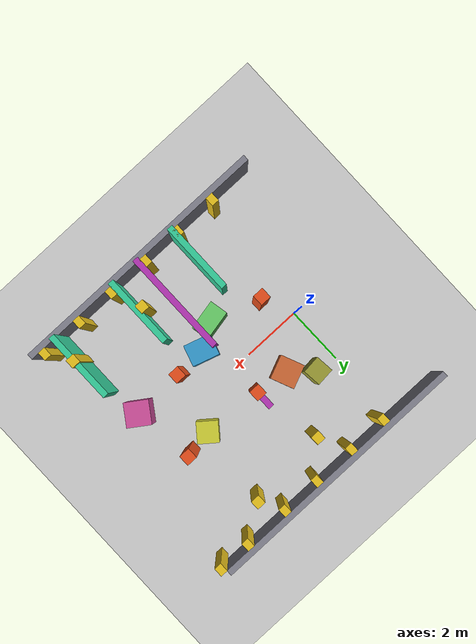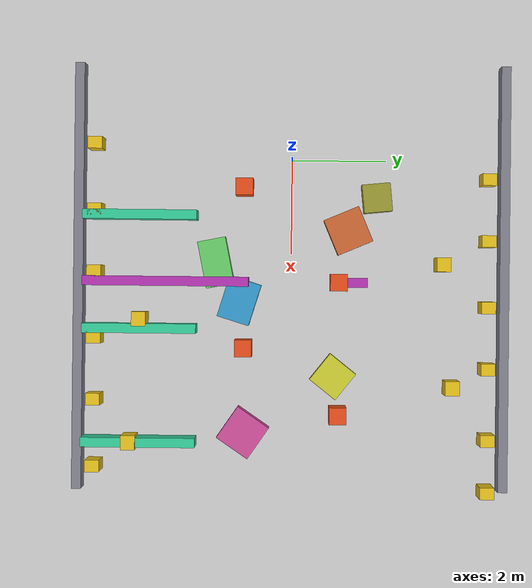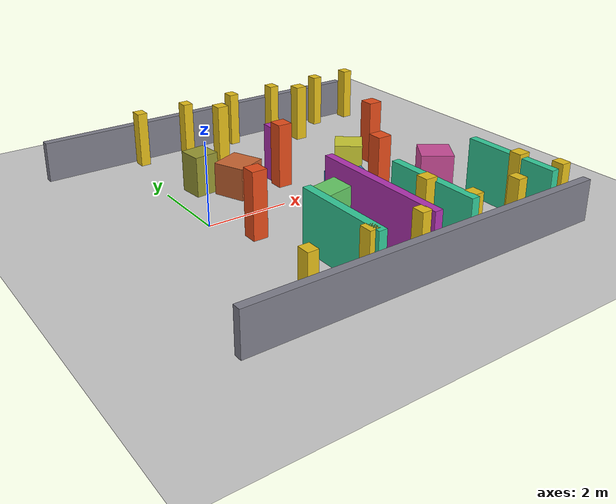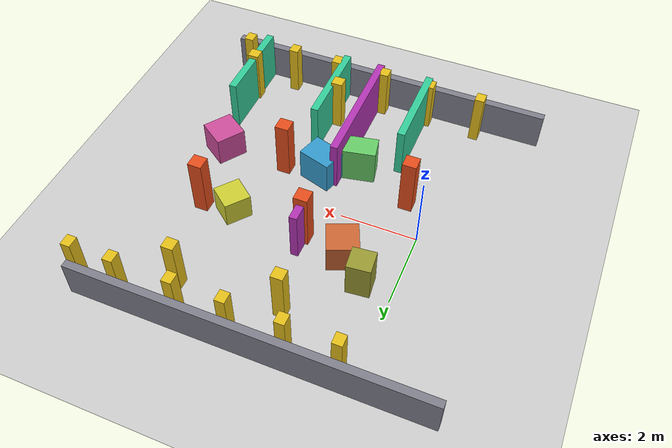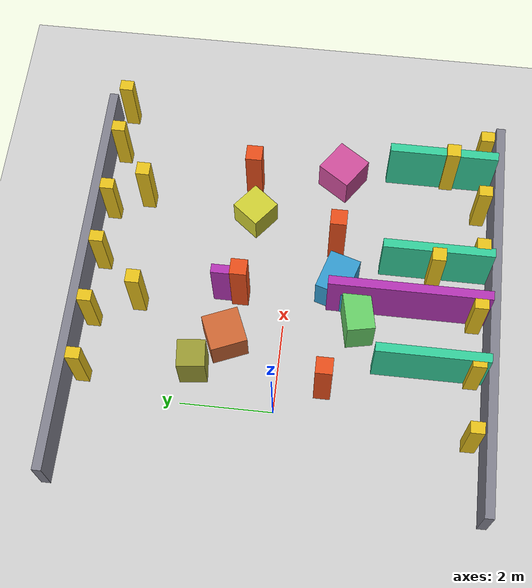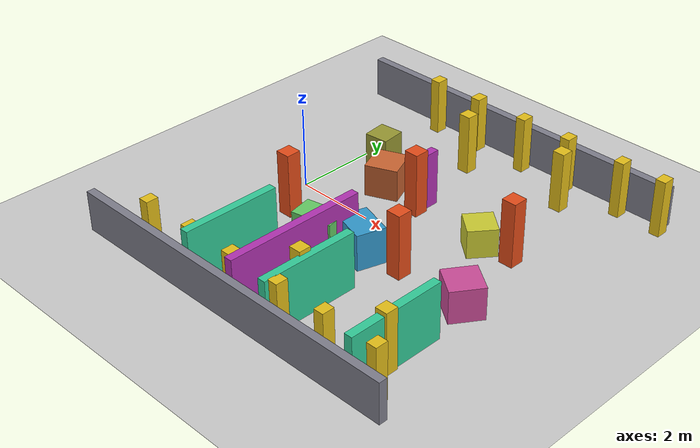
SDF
<?xml version="1.0" ?>
<sdf version="1.6">
  <world name="m1_sparse_plain">

    <!-- 物理参数：1ms 步长 / RTF 目标 0.3~0.8（rate=500 → 上限 0.5） -->
    <physics type="ode">
      <max_step_size>0.001</max_step_size>
      <real_time_update_rate>500</real_time_update_rate>
      <max_contacts>20</max_contacts>
      <ode>
        <solver>
          <type>quick</type>
          <iters>50</iters>
          <sor>1.3</sor>
        </solver>
        <constraints>
          <cfm>0.0</cfm>
          <erp>0.2</erp>
        </constraints>
      </ode>
    </physics>

    <!-- 全局 ROS 桥：/clock + /use_sim_time + spawn_model + /gazebo/model_states（真值交叉核对用） -->
    <plugin name="gazebo_ros_init" filename="libgazebo_ros_init.so"/>
    <plugin name="gazebo_ros_factory" filename="libgazebo_ros_factory.so"/>

    <!-- 光照与地面 -->
    <include>
      <uri>model://sun</uri>
    </include>
    <include>
      <uri>model://ground_plane</uri>
    </include>

    <!-- 场景边界墙（可选防跑飞，距走廊 4m，M1 判据不依赖） -->
    <model name="perimeter_north">
      <static>true</static>
      <pose>2.5 4.5 0.5 0 0 0</pose>
      <link name="link">
        <collision name="col"><geometry><box><size>9 0.2 1.0</size></box></geometry></collision>
        <visual name="vis"><geometry><box><size>9 0.2 1.0</size></box></geometry><material><ambient>0.5 0.5 0.55 1</ambient></material></visual>
      </link>
    </model>
    <model name="perimeter_south">
      <static>true</static>
      <pose>2.5 -4.5 0.5 0 0 0</pose>
      <link name="link">
        <collision name="col"><geometry><box><size>9 0.2 1.0</size></box></geometry></collision>
        <visual name="vis"><geometry><box><size>9 0.2 1.0</size></box></geometry><material><ambient>0.5 0.5 0.55 1</ambient></material></visual>
      </link>
    </model>

    <!-- 非对称定位特征（R786 方案 A）：沿墙 12 根肋 + 4 根独立柱；
         x 位置左右不等间距 → 给沿航向一维观测；|y|≥3.2 远离所有任务路线。 -->
    <model name="rib_n0">
      <static>true</static>
      <pose>0.4 4.15 0.70 0 0 0</pose>
      <link name="link">
        <collision name="col"><geometry><box><size>0.25 0.3 1.4</size></box></geometry></collision>
        <visual name="vis"><geometry><box><size>0.25 0.3 1.4</size></box></geometry><material><ambient>0.9 0.75 0.1 1</ambient></material></visual>
      </link>
    </model>
    <model name="rib_n1">
      <static>true</static>
      <pose>1.7 4.15 0.70 0 0 0</pose>
      <link name="link">
        <collision name="col"><geometry><box><size>0.25 0.3 1.4</size></box></geometry></collision>
        <visual name="vis"><geometry><box><size>0.25 0.3 1.4</size></box></geometry><material><ambient>0.9 0.75 0.1 1</ambient></material></visual>
      </link>
    </model>
    <model name="rib_n2">
      <static>true</static>
      <pose>3.1 4.15 0.70 0 0 0</pose>
      <link name="link">
        <collision name="col"><geometry><box><size>0.25 0.3 1.4</size></box></geometry></collision>
        <visual name="vis"><geometry><box><size>0.25 0.3 1.4</size></box></geometry><material><ambient>0.9 0.75 0.1 1</ambient></material></visual>
      </link>
    </model>
    <model name="rib_n3">
      <static>true</static>
      <pose>4.4 4.15 0.70 0 0 0</pose>
      <link name="link">
        <collision name="col"><geometry><box><size>0.25 0.3 1.4</size></box></geometry></collision>
        <visual name="vis"><geometry><box><size>0.25 0.3 1.4</size></box></geometry><material><ambient>0.9 0.75 0.1 1</ambient></material></visual>
      </link>
    </model>
    <model name="rib_n4">
      <static>true</static>
      <pose>5.9 4.15 0.70 0 0 0</pose>
      <link name="link">
        <collision name="col"><geometry><box><size>0.25 0.3 1.4</size></box></geometry></collision>
        <visual name="vis"><geometry><box><size>0.25 0.3 1.4</size></box></geometry><material><ambient>0.9 0.75 0.1 1</ambient></material></visual>
      </link>
    </model>
    <model name="rib_n5">
      <static>true</static>
      <pose>7.0 4.15 0.70 0 0 0</pose>
      <link name="link">
        <collision name="col"><geometry><box><size>0.25 0.3 1.4</size></box></geometry></collision>
        <visual name="vis"><geometry><box><size>0.25 0.3 1.4</size></box></geometry><material><ambient>0.9 0.75 0.1 1</ambient></material></visual>
      </link>
    </model>
    <model name="rib_s0">
      <static>true</static>
      <pose>-0.3 -4.15 0.70 0 0 0</pose>
      <link name="link">
        <collision name="col"><geometry><box><size>0.25 0.3 1.4</size></box></geometry></collision>
        <visual name="vis"><geometry><box><size>0.25 0.3 1.4</size></box></geometry><material><ambient>0.9 0.75 0.1 1</ambient></material></visual>
      </link>
    </model>
    <model name="rib_s1">
      <static>true</static>
      <pose>1.1 -4.15 0.70 0 0 0</pose>
      <link name="link">
        <collision name="col"><geometry><box><size>0.25 0.3 1.4</size></box></geometry></collision>
        <visual name="vis"><geometry><box><size>0.25 0.3 1.4</size></box></geometry><material><ambient>0.9 0.75 0.1 1</ambient></material></visual>
      </link>
    </model>
    <model name="rib_s2">
      <static>true</static>
      <pose>2.4 -4.15 0.70 0 0 0</pose>
      <link name="link">
        <collision name="col"><geometry><box><size>0.25 0.3 1.4</size></box></geometry></collision>
        <visual name="vis"><geometry><box><size>0.25 0.3 1.4</size></box></geometry><material><ambient>0.9 0.75 0.1 1</ambient></material></visual>
      </link>
    </model>
    <model name="rib_s3">
      <static>true</static>
      <pose>3.8 -4.15 0.70 0 0 0</pose>
      <link name="link">
        <collision name="col"><geometry><box><size>0.25 0.3 1.4</size></box></geometry></collision>
        <visual name="vis"><geometry><box><size>0.25 0.3 1.4</size></box></geometry><material><ambient>0.9 0.75 0.1 1</ambient></material></visual>
      </link>
    </model>
    <model name="rib_s4">
      <static>true</static>
      <pose>5.1 -4.15 0.70 0 0 0</pose>
      <link name="link">
        <collision name="col"><geometry><box><size>0.25 0.3 1.4</size></box></geometry></collision>
        <visual name="vis"><geometry><box><size>0.25 0.3 1.4</size></box></geometry><material><ambient>0.9 0.75 0.1 1</ambient></material></visual>
      </link>
    </model>
    <model name="rib_s5">
      <static>true</static>
      <pose>6.5 -4.15 0.70 0 0 0</pose>
      <link name="link">
        <collision name="col"><geometry><box><size>0.25 0.3 1.4</size></box></geometry></collision>
        <visual name="vis"><geometry><box><size>0.25 0.3 1.4</size></box></geometry><material><ambient>0.9 0.75 0.1 1</ambient></material></visual>
      </link>
    </model>
    <model name="pyl_1">
      <static>true</static>
      <pose>2.2 3.2 0.75 0 0 0</pose>
      <link name="link">
        <collision name="col"><geometry><box><size>0.3 0.3 1.5</size></box></geometry></collision>
        <visual name="vis"><geometry><box><size>0.3 0.3 1.5</size></box></geometry><material><ambient>0.9 0.75 0.1 1</ambient></material></visual>
      </link>
    </model>
    <model name="pyl_2">
      <static>true</static>
      <pose>4.8 3.4 0.75 0 0 0</pose>
      <link name="link">
        <collision name="col"><geometry><box><size>0.3 0.3 1.5</size></box></geometry></collision>
        <visual name="vis"><geometry><box><size>0.3 0.3 1.5</size></box></geometry><material><ambient>0.9 0.75 0.1 1</ambient></material></visual>
      </link>
    </model>
    <model name="pyl_3">
      <static>true</static>
      <pose>3.4 -3.2 0.75 0 0 0</pose>
      <link name="link">
        <collision name="col"><geometry><box><size>0.3 0.3 1.5</size></box></geometry></collision>
        <visual name="vis"><geometry><box><size>0.3 0.3 1.5</size></box></geometry><material><ambient>0.9 0.75 0.1 1</ambient></material></visual>
      </link>
    </model>
    <model name="pyl_4">
      <static>true</static>
      <pose>6.0 -3.4 0.75 0 0 0</pose>
      <link name="link">
        <collision name="col"><geometry><box><size>0.3 0.3 1.5</size></box></geometry></collision>
        <visual name="vis"><geometry><box><size>0.3 0.3 1.5</size></box></geometry><material><ambient>0.9 0.75 0.1 1</ambient></material></visual>
      </link>
    </model>

    <!-- R786 方案 A 加强：南侧三片垂直于 x 的短隔墙（内沿 y=-2.0，远离所有任务路线）。
         面法向 ±x → 直接约束沿航向一维位置。 -->
    <model name="jut_s0">
      <static>true</static>
      <pose>1.2 -3.2 0.7 0 0 0</pose>
      <link name="link">
        <collision name="col"><geometry><box><size>0.2 2.4 1.4</size></box></geometry></collision>
        <visual name="vis"><geometry><box><size>0.2 2.4 1.4</size></box></geometry><material><ambient>0.2 0.8 0.6 1</ambient></material></visual>
      </link>
    </model>
    <model name="jut_s1">
      <static>true</static>
      <pose>3.6 -3.2 0.7 0 0 0</pose>
      <link name="link">
        <collision name="col"><geometry><box><size>0.2 2.4 1.4</size></box></geometry></collision>
        <visual name="vis"><geometry><box><size>0.2 2.4 1.4</size></box></geometry><material><ambient>0.2 0.8 0.6 1</ambient></material></visual>
      </link>
    </model>
    <model name="jut_s2">
      <static>true</static>
      <pose>6.0 -3.2 0.7 0 0 0</pose>
      <link name="link">
        <collision name="col"><geometry><box><size>0.2 2.4 1.4</size></box></geometry></collision>
        <visual name="vis"><geometry><box><size>0.2 2.4 1.4</size></box></geometry><material><ambient>0.2 0.8 0.6 1</ambient></material></visual>
      </link>
    </model>

    <!-- R786 方案 A 三招：走廊内四根柱（离中心线约 1 m，最近的 x 观测量）。
         位置避开六个稀障盒与三层楼梯场景。 -->
    <model name="pil_c0">
      <static>true</static>
      <pose>0.6 -1.0 0.8 0 0 0</pose>
      <link name="link">
        <collision name="col"><geometry><box><size>0.36 0.36 1.6</size></box></geometry></collision>
        <visual name="vis"><geometry><box><size>0.36 0.36 1.6</size></box></geometry><material><ambient>0.9 0.3 0.1 1</ambient></material></visual>
      </link>
    </model>
    <model name="pil_c1">
      <static>true</static>
      <pose>2.6 1.0 0.8 0 0 0</pose>
      <link name="link">
        <collision name="col"><geometry><box><size>0.36 0.36 1.6</size></box></geometry></collision>
        <visual name="vis"><geometry><box><size>0.36 0.36 1.6</size></box></geometry><material><ambient>0.9 0.3 0.1 1</ambient></material></visual>
      </link>
    </model>
    <model name="pil_c2">
      <static>true</static>
      <pose>4.0 -1.0 0.8 0 0 0</pose>
      <link name="link">
        <collision name="col"><geometry><box><size>0.36 0.36 1.6</size></box></geometry></collision>
        <visual name="vis"><geometry><box><size>0.36 0.36 1.6</size></box></geometry><material><ambient>0.9 0.3 0.1 1</ambient></material></visual>
      </link>
    </model>
    <model name="pil_c3">
      <static>true</static>
      <pose>5.4 1.0 0.8 0 0 0</pose>
      <link name="link">
        <collision name="col"><geometry><box><size>0.36 0.36 1.6</size></box></geometry></collision>
        <visual name="vis"><geometry><box><size>0.36 0.36 1.6</size></box></geometry><material><ambient>0.9 0.3 0.1 1</ambient></material></visual>
      </link>
    </model>

    <!-- R786 方案 A 第四式：x=2.6 带门洞的横墙（门洞 y∈[-0.9,0.9] 走定位路线，
         北侧 y>1.6 留任务路线）。门框面垂直于 x 且近距正对 → 直接约束沿航向。 -->
    <model name="door_s">
      <static>true</static>
      <pose>2.6 -2.65 0.7 0 0 0</pose>
      <link name="link">
        <collision name="col"><geometry><box><size>0.2 3.5 1.4</size></box></geometry></collision>
        <visual name="vis"><geometry><box><size>0.2 3.5 1.4</size></box></geometry><material><ambient>0.7 0.2 0.7 1</ambient></material></visual>
      </link>
    </model>
    <model name="door_n">
      <static>true</static>
      <pose>2.6 1.25 0.7 0 0 0</pose>
      <link name="link">
        <collision name="col"><geometry><box><size>0.2 0.7 1.4</size></box></geometry></collision>
        <visual name="vis"><geometry><box><size>0.2 0.7 1.4</size></box></geometry><material><ambient>0.7 0.2 0.7 1</ambient></material></visual>
      </link>
    </model>

    <!-- 稀障盒×6：size 0.6~1.0m，走|x|向走廊(0..5.5, |y|<0.6)外，给 LIO 特征 -->
    <model name="obs_1">
      <static>true</static>
      <pose>1.5 1.2 0.4 0 0 0.4</pose>
      <link name="link">
        <collision name="col"><geometry><box><size>0.8 0.8 0.8</size></box></geometry></collision>
        <visual name="vis"><geometry><box><size>0.8 0.8 0.8</size></box></geometry><material><ambient>0.8 0.4 0.2 1</ambient></material></visual>
      </link>
    </model>
    <model name="obs_2">
      <static>true</static>
      <pose>3.0 -1.1 0.45 0 0 -0.3</pose>
      <link name="link">
        <collision name="col"><geometry><box><size>0.9 0.7 0.9</size></box></geometry></collision>
        <visual name="vis"><geometry><box><size>0.9 0.7 0.9</size></box></geometry><material><ambient>0.2 0.6 0.8 1</ambient></material></visual>
      </link>
    </model>
    <model name="obs_3">
      <static>true</static>
      <pose>4.6 0.9 0.35 0 0 0.9</pose>
      <link name="link">
        <collision name="col"><geometry><box><size>0.7 0.7 0.7</size></box></geometry></collision>
        <visual name="vis"><geometry><box><size>0.7 0.7 0.7</size></box></geometry><material><ambient>0.8 0.8 0.2 1</ambient></material></visual>
      </link>
    </model>
    <model name="obs_4">
      <static>true</static>
      <pose>2.2 -1.6 0.5 0 0 0.2</pose>
      <link name="link">
        <collision name="col"><geometry><box><size>1.0 0.6 1.0</size></box></geometry></collision>
        <visual name="vis"><geometry><box><size>1.0 0.6 1.0</size></box></geometry><material><ambient>0.4 0.8 0.4 1</ambient></material></visual>
      </link>
    </model>
    <model name="obs_5">
      <static>true</static>
      <pose>5.8 -1.0 0.4 0 0 -0.6</pose>
      <link name="link">
        <collision name="col"><geometry><box><size>0.8 0.8 0.8</size></box></geometry></collision>
        <visual name="vis"><geometry><box><size>0.8 0.8 0.8</size></box></geometry><material><ambient>0.8 0.3 0.6 1</ambient></material></visual>
      </link>
    </model>
    <model name="obs_6">
      <static>true</static>
      <pose>0.8 1.8 0.5 0 0 0.1</pose>
      <link name="link">
        <collision name="col"><geometry><box><size>0.6 0.6 1.0</size></box></geometry></collision>
        <visual name="vis"><geometry><box><size>0.6 0.6 1.0</size></box></geometry><material><ambient>0.6 0.6 0.2 1</ambient></material></visual>
      </link>
    </model>

  </world>
</sdf>
